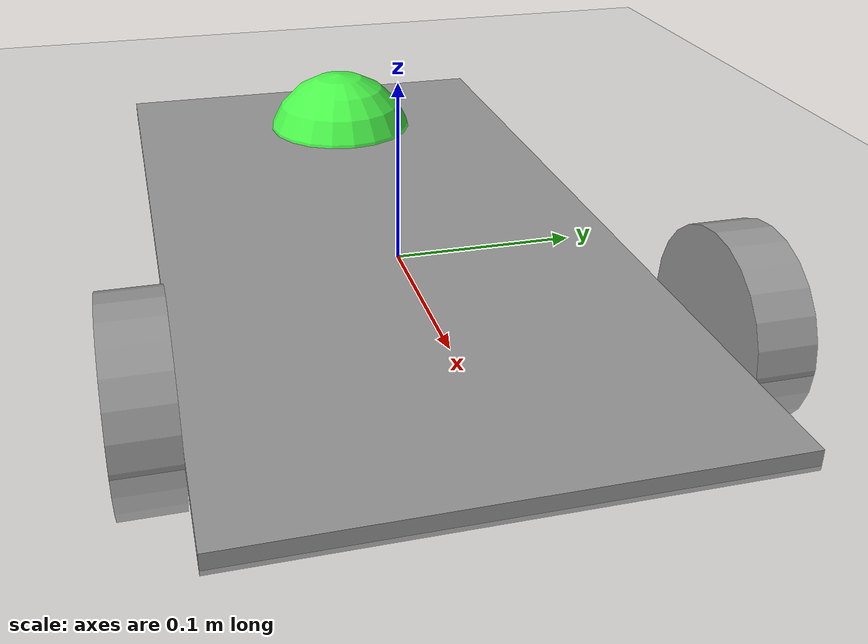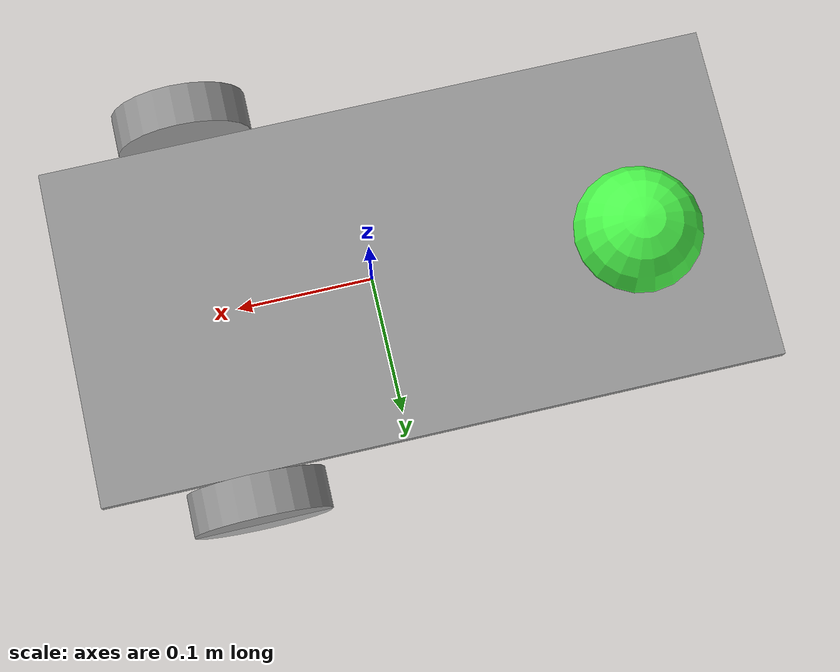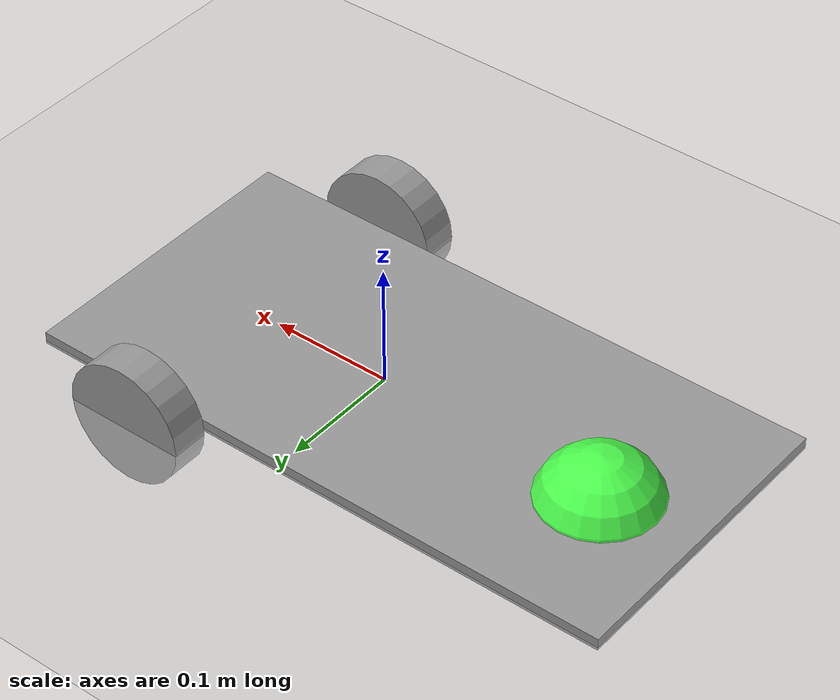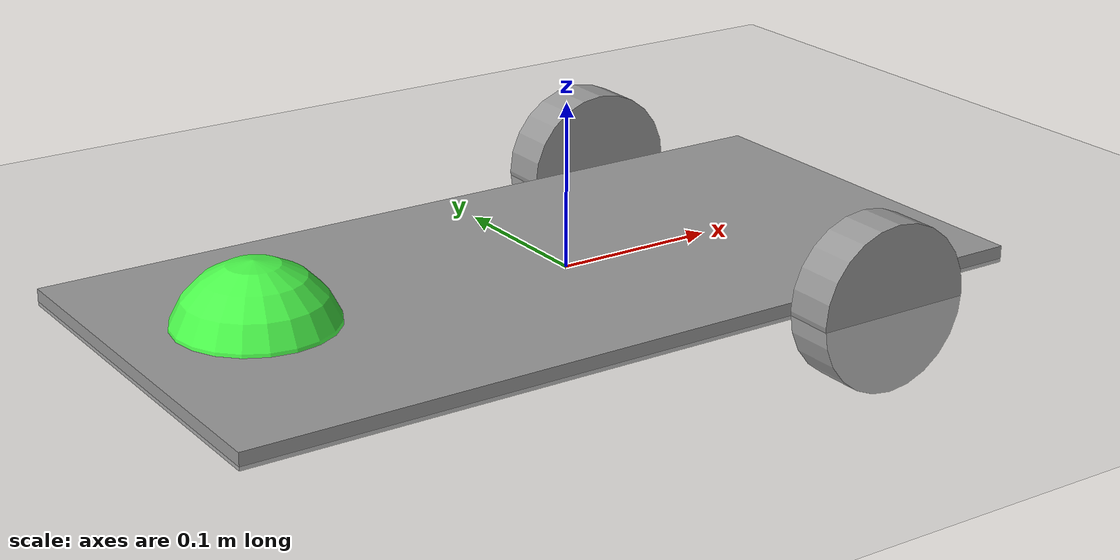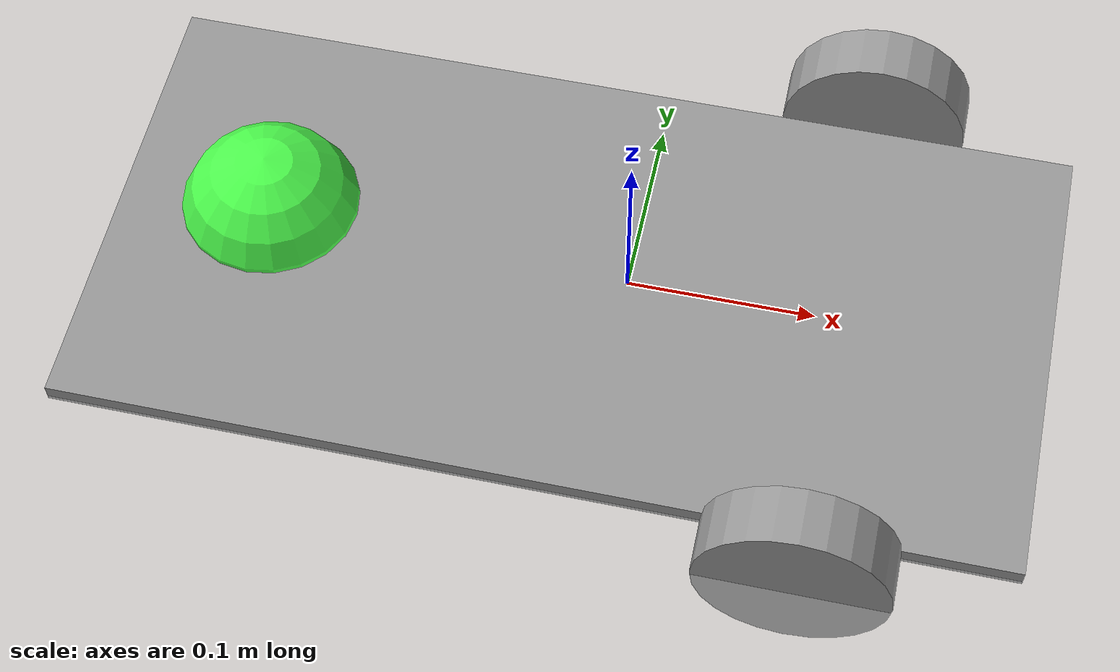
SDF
<sdf version="1.6">
 <world name="default">
  <model name="ground_plane">
   <static>1</static>
   <link name="link">
    <collision name="collision">
     <geometry><plane><normal>0 0 1</normal><size>100 100</size></plane></geometry>
     <surface>
      <contact><collide_bitmask>65535</collide_bitmask></contact>
      <friction><ode><mu>100</mu><mu2>50</mu2></ode></friction>
     </surface>
    </collision>
    <visual name="visual">
     <cast_shadows>0</cast_shadows>
     <geometry><plane><normal>0 0 1</normal><size>100 100</size></plane></geometry>
     <material>
      <script><uri>file://media/materials/scripts/gazebo.material</uri><name>Gazebo/Grey</name></script>
     </material>
    </visual>
   </link>
  </model>
  <model name="Velubot_0">
   <link name="link_1">
    <inertial>
     <mass>1</mass>
     <inertia>
      <ixx>0.166667</ixx>
      <ixy>0</ixy>
      <ixz>0</ixz>
      <iyy>0.166667</iyy>
      <iyz>0</iyz>
      <izz>0.166667</izz>
     </inertia>
    </inertial>
    <pose>-0.0275 -0.004371 0.002125 0 -0 0</pose>
    <visual name="visual">
     <geometry><box><size>0.5 0.25 0.01</size></box></geometry>
     <material>
      <lighting>1</lighting>
      <script><uri>file://media/materials/scripts/gazebo.material</uri><name>Gazebo/Grey</name></script>
      <shader type="vertex"><normal_map>__default__</normal_map></shader>
      <ambient>0.3 0.3 0.3 1</ambient>
      <diffuse>0.7 0.7 0.7 1</diffuse>
      <specular>0.01 0.01 0.01 1</specular>
      <emissive>0 0 0 1</emissive>
     </material>
    </visual>
    <collision name="collision">
     <geometry><box><size>0.5 0.25 0.01</size></box></geometry>
     <surface>
      <friction>
       <ode><mu>1</mu><mu2>1</mu2><fdir1>0 0 0</fdir1><slip1>0</slip1><slip2>0</slip2></ode>
       <torsional>
        <coefficient>1</coefficient>
        <patch_radius>0</patch_radius>
        <surface_radius>0</surface_radius>
        <use_patch_radius>1</use_patch_radius>
        <ode><slip>0</slip></ode>
       </torsional>
      </friction>
      <bounce><restitution_coefficient>0</restitution_coefficient><threshold>1e+06</threshold></bounce>
      <contact>
       <collide_without_contact>0</collide_without_contact>
       <collide_without_contact_bitmask>1</collide_without_contact_bitmask>
       <collide_bitmask>1</collide_bitmask>
       <ode>
        <soft_cfm>0</soft_cfm>
        <soft_erp>0.2</soft_erp>
        <kp>1e+13</kp>
        <kd>1</kd>
        <max_vel>0.01</max_vel>
        <min_depth>0</min_depth>
       </ode>
       <bullet>
        <split_impulse>1</split_impulse>
        <split_impulse_penetration_threshold>-0.01</split_impulse_penetration_threshold>
        <soft_cfm>0</soft_cfm>
        <soft_erp>0.2</soft_erp>
        <kp>1e+13</kp>
        <kd>1</kd>
       </bullet>
      </contact>
     </surface>
    </collision>
   </link>
   <link name="link_2">
    <inertial>
     <mass>1</mass>
     <inertia><ixx>0.1</ixx><ixy>0</ixy><ixz>0</ixz><iyy>0.1</iyy><iyz>0</iyz><izz>0.1</izz></inertia>
    </inertial>
    <pose>-0.1975 0.00813 -0.006375 0 -0 0</pose>
    <visual name="visual">
     <geometry><sphere><radius>0.05</radius></sphere></geometry>
     <material>
      <lighting>1</lighting>
      <script><uri>file://media/materials/scripts/gazebo.material</uri><name>Gazebo/Grey</name></script>
      <shader type="vertex"><normal_map>__default__</normal_map></shader>
      <ambient>0.3 1 0.3 1</ambient>
      <diffuse>0.7 0.7 0.7 1</diffuse>
      <specular>0.01 0.01 0.01 1</specular>
      <emissive>0 0 0 1</emissive>
     </material>
    </visual>
    <collision name="collision">
     <geometry><sphere><radius>0.05</radius></sphere></geometry>
     <surface>
      <friction>
       <ode><mu>1</mu><mu2>1</mu2><fdir1>0 0 0</fdir1><slip1>0</slip1><slip2>0</slip2></ode>
       <torsional>
        <coefficient>1</coefficient>
        <patch_radius>0</patch_radius>
        <surface_radius>0</surface_radius>
        <use_patch_radius>1</use_patch_radius>
        <ode><slip>0</slip></ode>
       </torsional>
      </friction>
      <bounce><restitution_coefficient>0</restitution_coefficient><threshold>1e+06</threshold></bounce>
      <contact>
       <collide_without_contact>0</collide_without_contact>
       <collide_without_contact_bitmask>1</collide_without_contact_bitmask>
       <collide_bitmask>1</collide_bitmask>
       <ode>
        <soft_cfm>0</soft_cfm>
        <soft_erp>0.2</soft_erp>
        <kp>1e+13</kp>
        <kd>1</kd>
        <max_vel>0.01</max_vel>
        <min_depth>0</min_depth>
       </ode>
       <bullet>
        <split_impulse>1</split_impulse>
        <split_impulse_penetration_threshold>-0.01</split_impulse_penetration_threshold>
        <soft_cfm>0</soft_cfm>
        <soft_erp>0.2</soft_erp>
        <kp>1e+13</kp>
        <kd>1</kd>
       </bullet>
      </contact>
     </surface>
    </collision>
   </link>
   <link name="link_3">
    <inertial>
     <mass>1</mass>
     <inertia><ixx>0.145833</ixx><ixy>0</ixy><ixz>0</ixz><iyy>0.145833</iyy><iyz>0</iyz><izz>0.125</izz></inertia>
    </inertial>
    <pose>0.1125 0.140617 0.002125 1.5707 -0 0</pose>
    <visual name="visual">
     <geometry><cylinder><radius>0.05</radius><length>0.03</length></cylinder></geometry>
     <material>
      <lighting>1</lighting>
      <script><uri>file://media/materials/scripts/gazebo.material</uri><name>Gazebo/Grey</name></script>
      <shader type="vertex"><normal_map>__default__</normal_map></shader>
      <ambient>0 0 0 1</ambient>
      <diffuse>0.7 0.7 0.7 1</diffuse>
      <specular>0.01 0.01 0.01 1</specular>
      <emissive>0 0 0 1</emissive>
     </material>
    </visual>
    <collision name="collision">
     <geometry><cylinder><radius>0.05</radius><length>0.03</length></cylinder></geometry>
     <surface>
      <friction>
       <ode><mu>1</mu><mu2>1</mu2><fdir1>0 0 0</fdir1><slip1>0</slip1><slip2>0</slip2></ode>
       <torsional>
        <coefficient>1</coefficient>
        <patch_radius>0</patch_radius>
        <surface_radius>0</surface_radius>
        <use_patch_radius>1</use_patch_radius>
        <ode><slip>0</slip></ode>
       </torsional>
      </friction>
      <bounce><restitution_coefficient>0</restitution_coefficient><threshold>1e+06</threshold></bounce>
      <contact>
       <collide_without_contact>0</collide_without_contact>
       <collide_without_contact_bitmask>1</collide_without_contact_bitmask>
       <collide_bitmask>1</collide_bitmask>
       <ode>
        <soft_cfm>0</soft_cfm>
        <soft_erp>0.2</soft_erp>
        <kp>1e+13</kp>
        <kd>1</kd>
        <max_vel>0.01</max_vel>
        <min_depth>0</min_depth>
       </ode>
       <bullet>
        <split_impulse>1</split_impulse>
        <split_impulse_penetration_threshold>-0.01</split_impulse_penetration_threshold>
        <soft_cfm>0</soft_cfm>
        <soft_erp>0.2</soft_erp>
        <kp>1e+13</kp>
        <kd>1</kd>
       </bullet>
      </contact>
     </surface>
    </collision>
   </link>
   <link name="link_3_clone">
    <inertial>
     <mass>1</mass>
     <inertia><ixx>0.145833</ixx><ixy>0</ixy><ixz>0</ixz><iyy>0.145833</iyy><iyz>0</iyz><izz>0.125</izz></inertia>
    </inertial>
    <pose>0.1125 -0.144376 0.002125 1.5707 -0 0</pose>
    <visual name="visual">
     <geometry><cylinder><radius>0.05</radius><length>0.03</length></cylinder></geometry>
     <material>
      <lighting>1</lighting>
      <script><uri>file://media/materials/scripts/gazebo.material</uri><name>Gazebo/Grey</name></script>
      <shader type="vertex"><normal_map>__default__</normal_map></shader>
      <ambient>0 0 0 1</ambient>
      <diffuse>0.7 0.7 0.7 1</diffuse>
      <specular>0.01 0.01 0.01 1</specular>
      <emissive>0 0 0 1</emissive>
     </material>
    </visual>
    <collision name="collision">
     <geometry><cylinder><radius>0.05</radius><length>0.03</length></cylinder></geometry>
     <surface>
      <friction>
       <ode><mu>1</mu><mu2>1</mu2><fdir1>0 0 0</fdir1><slip1>0</slip1><slip2>0</slip2></ode>
       <torsional>
        <coefficient>1</coefficient>
        <patch_radius>0</patch_radius>
        <surface_radius>0</surface_radius>
        <use_patch_radius>1</use_patch_radius>
        <ode><slip>0</slip></ode>
       </torsional>
      </friction>
      <bounce><restitution_coefficient>0</restitution_coefficient><threshold>1e+06</threshold></bounce>
      <contact>
       <collide_without_contact>0</collide_without_contact>
       <collide_without_contact_bitmask>1</collide_without_contact_bitmask>
       <collide_bitmask>1</collide_bitmask>
       <ode>
        <soft_cfm>0</soft_cfm>
        <soft_erp>0.2</soft_erp>
        <kp>1e+13</kp>
        <kd>1</kd>
        <max_vel>0.01</max_vel>
        <min_depth>0</min_depth>
       </ode>
       <bullet>
        <split_impulse>1</split_impulse>
        <split_impulse_penetration_threshold>-0.01</split_impulse_penetration_threshold>
        <soft_cfm>0</soft_cfm>
        <soft_erp>0.2</soft_erp>
        <kp>1e+13</kp>
        <kd>1</kd>
       </bullet>
      </contact>
     </surface>
    </collision>
   </link>
   <joint name="link_1_JOINT_0" type="revolute2">
    <parent>link_1</parent>
    <child>link_2</child>
    <axis>
     <xyz>1 0 0</xyz>
     <use_parent_model_frame>0</use_parent_model_frame>
     <limit>
      <lower>-1.79769e+308</lower>
      <upper>1.79769e+308</upper>
      <effort>-1</effort>
      <velocity>-1</velocity>
     </limit>
     <dynamics>
      <spring_reference>0</spring_reference>
      <spring_stiffness>0</spring_stiffness>
      <damping>0</damping>
     </dynamics>
    </axis>
    <axis2>
     <xyz>0 1 0</xyz>
     <use_parent_model_frame>0</use_parent_model_frame>
     <dynamics>
      <spring_reference>0</spring_reference>
      <spring_stiffness>0</spring_stiffness>
      <damping>0</damping>
     </dynamics>
     <limit>
      <lower>-1.79769e+308</lower>
      <upper>1.79769e+308</upper>
      <effort>-1</effort>
      <velocity>-1</velocity>
     </limit>
    </axis2>
    <physics>
     <ode><limit><cfm>0</cfm><erp>0.2</erp></limit><suspension><cfm>0</cfm><erp>0.2</erp></suspension></ode>
    </physics>
   </joint>
   <joint name="link_1_JOINT_1" type="revolute">
    <parent>link_1</parent>
    <child>link_3</child>
    <axis>
     <xyz>0 0 1</xyz>
     <use_parent_model_frame>0</use_parent_model_frame>
     <limit>
      <lower>-1.79769e+308</lower>
      <upper>1.79769e+308</upper>
      <effort>-1</effort>
      <velocity>-1</velocity>
     </limit>
     <dynamics>
      <spring_reference>0</spring_reference>
      <spring_stiffness>0</spring_stiffness>
      <damping>0</damping>
     </dynamics>
    </axis>
    <physics>
     <ode><limit><cfm>0</cfm><erp>0.2</erp></limit><suspension><cfm>0</cfm><erp>0.2</erp></suspension></ode>
    </physics>
   </joint>
   <joint name="link_1_JOINT_2" type="revolute">
    <parent>link_1</parent>
    <child>link_3_clone</child>
    <axis>
     <xyz>0 0 1</xyz>
     <use_parent_model_frame>0</use_parent_model_frame>
     <limit>
      <lower>-1.79769e+308</lower>
      <upper>1.79769e+308</upper>
      <effort>-1</effort>
      <velocity>-1</velocity>
     </limit>
     <dynamics>
      <spring_reference>0</spring_reference>
      <spring_stiffness>0</spring_stiffness>
      <damping>0</damping>
     </dynamics>
    </axis>
    <physics>
     <ode><limit><cfm>0</cfm><erp>0.2</erp></limit><suspension><cfm>0</cfm><erp>0.2</erp></suspension></ode>
    </physics>
   </joint>
   <static>0</static>
  </model>
 </world>
</sdf>
